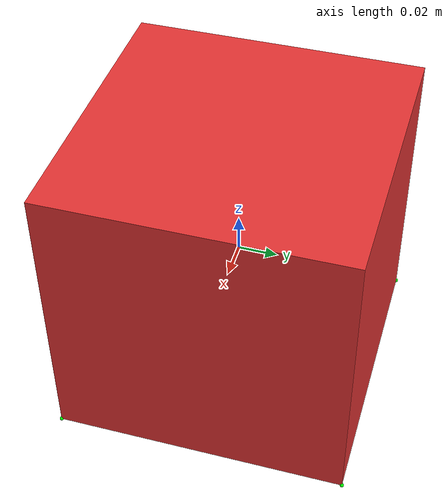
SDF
<?xml version="1.0"?>
<sdf version="1.7">
  <model name="custom_box">
    <!--
    This is a 0.15x0.15x0.15 m box with contact
    spheres on the corners.
    -->
    <link name="base_link">
      <inertial>
        <mass>0.2</mass>
        <inertia>
          <ixx>0.0003333333333333334</ixx>
          <ixy>0</ixy>
          <ixz>0</ixz>
          <iyy>0.0003333333333333334</iyy>
          <iyz>0</iyz>
          <izz>0.0003333333333333334</izz>
        </inertia>
      </inertial>
      <visual name="box_visual">
        <pose>0 0 0 0 0 0</pose>
        <geometry>
          <box>
            <size>0.15 0.15 0.15</size>
          </box>
        </geometry>
        <material>
          <diffuse>0.9 0.2 0.2 1.0</diffuse>
        </material>
      </visual>
      <collision name="bottom_corner_collision1">
        <pose>0.075 0.075 -0.075 0 0 0 </pose>
        <geometry>
          <sphere>
            <radius>1e-7</radius>
          </sphere>
        </geometry>
      </collision>
      <visual name="bottom_corner_visual1">
        <pose>0.075 0.075 -0.075 0 0 0 </pose>
        <geometry>
          <sphere>
            <radius>1e-3</radius>
          </sphere>
        </geometry>
        <material>
          <diffuse>0.0 1.0 0.0 1.0</diffuse>
        </material>
      </visual>
      <collision name="bottom_corner_collision2">
        <pose>0.075 -0.075 -0.075 0 0 0 </pose>
        <geometry>
          <sphere>
            <radius>1e-7</radius>
          </sphere>
        </geometry>
      </collision>
      <visual name="bottom_corner_visual2">
        <pose>0.075 -0.075 -0.075 0 0 0 </pose>
        <geometry>
          <sphere>
            <radius>1e-3</radius>
          </sphere>
        </geometry>
        <material>
          <diffuse>0.0 1.0 0.0 1.0</diffuse>
        </material>
      </visual>
      <collision name="bottom_corner_collision3">
        <pose>-0.075 0.075 -0.075 0 0 0 </pose>
        <geometry>
          <sphere>
            <radius>1e-7</radius>
          </sphere>
        </geometry>
      </collision>
      <visual name="bottom_corner_visual3">
        <pose>-0.075 0.075 -0.075 0 0 0 </pose>
        <geometry>
          <sphere>
            <radius>1e-3</radius>
          </sphere>
        </geometry>
        <material>
          <diffuse>0.0 1.0 0.0 1.0</diffuse>
        </material>
      </visual>
      <collision name="bottom_corner_collision4">
        <pose>-0.075 -0.075 -0.075 0 0 0 </pose>
        <geometry>
          <sphere>
            <radius>1e-7</radius>
          </sphere>
        </geometry>
      </collision>
      <visual name="bottom_corner_visual4">
        <pose>-0.075 -0.075 -0.075 0 0 0 </pose>
        <geometry>
          <sphere>
            <radius>1e-3</radius>
          </sphere>
        </geometry>
        <material>
          <diffuse>0.0 1.0 0.0 1.0</diffuse>
        </material>
      </visual>
      <collision name="push_point_collision">
        <pose>-0.075 0 0 0 0 0 </pose>
        <geometry>
          <sphere>
            <radius>1e-3</radius>
          </sphere>
        </geometry>
      </collision>
      <visual name="push_point_visual">
        <pose>-0.075 0 0 0 0 0 </pose>
        <geometry>
          <sphere>
            <radius>1e-3</radius>
          </sphere>
        </geometry>
        <material>
          <diffuse>0.0 1.0 0.0 1.0</diffuse>
        </material>
      </visual>
    </link>
  </model>
</sdf>
